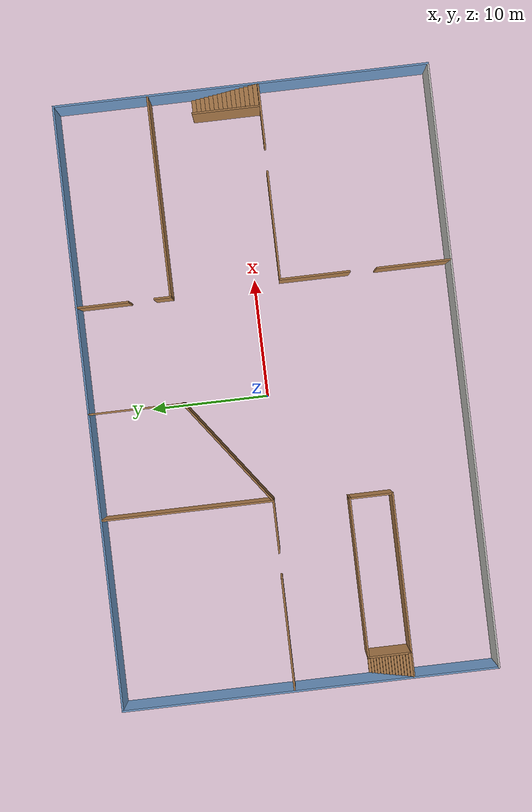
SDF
<?xml version='1.0'?>
<sdf version='1.6'>
  <model name='firstBuilding'>
    <pose frame=''>0.73104 -0.747693 0 0 -0 0</pose>
    <link name='Stairs_2'>
      <visual name='Stairs_2_Visual_0'>
        <pose frame=''>24.4573 4.15793 0.083333 0 -0 0</pose>
        <geometry>
          <box>
            <size>1.76432 0.380833 0.166667</size>
          </box>
        </geometry>
        <material>
          <script>
            <uri>file://media/materials/scripts/gazebo.material</uri>
            <name>Gazebo/Wood</name>
          </script>
          <ambient>1 1 1 1</ambient>
        </material>
        <meta>
          <layer>0</layer>
        </meta>
      </visual>
      <collision name='Stairs_2_Collision_0'>
        <geometry>
          <box>
            <size>1.76432 0.380833 0.166667</size>
          </box>
        </geometry>
        <pose frame=''>24.4573 4.15793 0.083333 0 -0 0</pose>
      </collision>
      <visual name='Stairs_2_Visual_1'>
        <pose frame=''>24.4573 3.77709 0.25 0 -0 0</pose>
        <geometry>
          <box>
            <size>1.76432 0.380833 0.166667</size>
          </box>
        </geometry>
        <material>
          <script>
            <uri>file://media/materials/scripts/gazebo.material</uri>
            <name>Gazebo/Wood</name>
          </script>
          <ambient>1 1 1 1</ambient>
        </material>
        <meta>
          <layer>0</layer>
        </meta>
      </visual>
      <collision name='Stairs_2_Collision_1'>
        <geometry>
          <box>
            <size>1.76432 0.380833 0.166667</size>
          </box>
        </geometry>
        <pose frame=''>24.4573 3.77709 0.25 0 -0 0</pose>
      </collision>
      <visual name='Stairs_2_Visual_2'>
        <pose frame=''>24.4573 3.39626 0.416667 0 -0 0</pose>
        <geometry>
          <box>
            <size>1.76432 0.380833 0.166667</size>
          </box>
        </geometry>
        <material>
          <script>
            <uri>file://media/materials/scripts/gazebo.material</uri>
            <name>Gazebo/Wood</name>
          </script>
          <ambient>1 1 1 1</ambient>
        </material>
        <meta>
          <layer>0</layer>
        </meta>
      </visual>
      <collision name='Stairs_2_Collision_2'>
        <geometry>
          <box>
            <size>1.76432 0.380833 0.166667</size>
          </box>
        </geometry>
        <pose frame=''>24.4573 3.39626 0.416667 0 -0 0</pose>
      </collision>
      <visual name='Stairs_2_Visual_3'>
        <pose frame=''>24.4573 3.01543 0.583333 0 -0 0</pose>
        <geometry>
          <box>
            <size>1.76432 0.380833 0.166667</size>
          </box>
        </geometry>
        <material>
          <script>
            <uri>file://media/materials/scripts/gazebo.material</uri>
            <name>Gazebo/Wood</name>
          </script>
          <ambient>1 1 1 1</ambient>
        </material>
        <meta>
          <layer>0</layer>
        </meta>
      </visual>
      <collision name='Stairs_2_Collision_3'>
        <geometry>
          <box>
            <size>1.76432 0.380833 0.166667</size>
          </box>
        </geometry>
        <pose frame=''>24.4573 3.01543 0.583333 0 -0 0</pose>
      </collision>
      <visual name='Stairs_2_Visual_4'>
        <pose frame=''>24.4573 2.6346 0.75 0 -0 0</pose>
        <geometry>
          <box>
            <size>1.76432 0.380833 0.166667</size>
          </box>
        </geometry>
        <material>
          <script>
            <uri>file://media/materials/scripts/gazebo.material</uri>
            <name>Gazebo/Wood</name>
          </script>
          <ambient>1 1 1 1</ambient>
        </material>
        <meta>
          <layer>0</layer>
        </meta>
      </visual>
      <collision name='Stairs_2_Collision_4'>
        <geometry>
          <box>
            <size>1.76432 0.380833 0.166667</size>
          </box>
        </geometry>
        <pose frame=''>24.4573 2.6346 0.75 0 -0 0</pose>
      </collision>
      <visual name='Stairs_2_Visual_5'>
        <pose frame=''>24.4573 2.25376 0.916667 0 -0 0</pose>
        <geometry>
          <box>
            <size>1.76432 0.380833 0.166667</size>
          </box>
        </geometry>
        <material>
          <script>
            <uri>file://media/materials/scripts/gazebo.material</uri>
            <name>Gazebo/Wood</name>
          </script>
          <ambient>1 1 1 1</ambient>
        </material>
        <meta>
          <layer>0</layer>
        </meta>
      </visual>
      <collision name='Stairs_2_Collision_5'>
        <geometry>
          <box>
            <size>1.76432 0.380833 0.166667</size>
          </box>
        </geometry>
        <pose frame=''>24.4573 2.25376 0.916667 0 -0 0</pose>
      </collision>
      <visual name='Stairs_2_Visual_6'>
        <pose frame=''>24.4573 1.87293 1.08333 0 -0 0</pose>
        <geometry>
          <box>
            <size>1.76432 0.380833 0.166667</size>
          </box>
        </geometry>
        <material>
          <script>
            <uri>file://media/materials/scripts/gazebo.material</uri>
            <name>Gazebo/Wood</name>
          </script>
          <ambient>1 1 1 1</ambient>
        </material>
        <meta>
          <layer>0</layer>
        </meta>
      </visual>
      <collision name='Stairs_2_Collision_6'>
        <geometry>
          <box>
            <size>1.76432 0.380833 0.166667</size>
          </box>
        </geometry>
        <pose frame=''>24.4573 1.87293 1.08333 0 -0 0</pose>
      </collision>
      <visual name='Stairs_2_Visual_7'>
        <pose frame=''>24.4573 1.4921 1.25 0 -0 0</pose>
        <geometry>
          <box>
            <size>1.76432 0.380833 0.166667</size>
          </box>
        </geometry>
        <material>
          <script>
            <uri>file://media/materials/scripts/gazebo.material</uri>
            <name>Gazebo/Wood</name>
          </script>
          <ambient>1 1 1 1</ambient>
        </material>
        <meta>
          <layer>0</layer>
        </meta>
      </visual>
      <collision name='Stairs_2_Collision_7'>
        <geometry>
          <box>
            <size>1.76432 0.380833 0.166667</size>
          </box>
        </geometry>
        <pose frame=''>24.4573 1.4921 1.25 0 -0 0</pose>
      </collision>
      <visual name='Stairs_2_Visual_8'>
        <pose frame=''>24.4573 1.11126 1.41667 0 -0 0</pose>
        <geometry>
          <box>
            <size>1.76432 0.380833 0.166667</size>
          </box>
        </geometry>
        <material>
          <script>
            <uri>file://media/materials/scripts/gazebo.material</uri>
            <name>Gazebo/Wood</name>
          </script>
          <ambient>1 1 1 1</ambient>
        </material>
        <meta>
          <layer>0</layer>
        </meta>
      </visual>
      <collision name='Stairs_2_Collision_8'>
        <geometry>
          <box>
            <size>1.76432 0.380833 0.166667</size>
          </box>
        </geometry>
        <pose frame=''>24.4573 1.11126 1.41667 0 -0 0</pose>
      </collision>
      <visual name='Stairs_2_Visual_9'>
        <pose frame=''>24.4573 0.73043 1.58333 0 -0 0</pose>
        <geometry>
          <box>
            <size>1.76432 0.380833 0.166667</size>
          </box>
        </geometry>
        <material>
          <script>
            <uri>file://media/materials/scripts/gazebo.material</uri>
            <name>Gazebo/Wood</name>
          </script>
          <ambient>1 1 1 1</ambient>
        </material>
        <meta>
          <layer>0</layer>
        </meta>
      </visual>
      <collision name='Stairs_2_Collision_9'>
        <geometry>
          <box>
            <size>1.76432 0.380833 0.166667</size>
          </box>
        </geometry>
        <pose frame=''>24.4573 0.73043 1.58333 0 -0 0</pose>
      </collision>
      <visual name='Stairs_2_Visual_10'>
        <pose frame=''>24.4573 0.349597 1.75 0 -0 0</pose>
        <geometry>
          <box>
            <size>1.76432 0.380833 0.166667</size>
          </box>
        </geometry>
        <material>
          <script>
            <uri>file://media/materials/scripts/gazebo.material</uri>
            <name>Gazebo/Wood</name>
          </script>
          <ambient>1 1 1 1</ambient>
        </material>
        <meta>
          <layer>0</layer>
        </meta>
      </visual>
      <collision name='Stairs_2_Collision_10'>
        <geometry>
          <box>
            <size>1.76432 0.380833 0.166667</size>
          </box>
        </geometry>
        <pose frame=''>24.4573 0.349597 1.75 0 -0 0</pose>
      </collision>
      <visual name='Stairs_2_Visual_11'>
        <pose frame=''>24.4573 -0.031236 1.91667 0 -0 0</pose>
        <geometry>
          <box>
            <size>1.76432 0.380833 0.166667</size>
          </box>
        </geometry>
        <material>
          <script>
            <uri>file://media/materials/scripts/gazebo.material</uri>
            <name>Gazebo/Wood</name>
          </script>
          <ambient>1 1 1 1</ambient>
        </material>
        <meta>
          <layer>0</layer>
        </meta>
      </visual>
      <collision name='Stairs_2_Collision_11'>
        <geometry>
          <box>
            <size>1.76432 0.380833 0.166667</size>
          </box>
        </geometry>
        <pose frame=''>24.4573 -0.031236 1.91667 0 -0 0</pose>
      </collision>
      <visual name='Stairs_2_Visual_12'>
        <pose frame=''>24.4573 -0.412068 2.08333 0 -0 0</pose>
        <geometry>
          <box>
            <size>1.76432 0.380833 0.166667</size>
          </box>
        </geometry>
        <material>
          <script>
            <uri>file://media/materials/scripts/gazebo.material</uri>
            <name>Gazebo/Wood</name>
          </script>
          <ambient>1 1 1 1</ambient>
        </material>
        <meta>
          <layer>0</layer>
        </meta>
      </visual>
      <collision name='Stairs_2_Collision_12'>
        <geometry>
          <box>
            <size>1.76432 0.380833 0.166667</size>
          </box>
        </geometry>
        <pose frame=''>24.4573 -0.412068 2.08333 0 -0 0</pose>
      </collision>
      <visual name='Stairs_2_Visual_13'>
        <pose frame=''>24.4573 -0.792901 2.25 0 -0 0</pose>
        <geometry>
          <box>
            <size>1.76432 0.380833 0.166667</size>
          </box>
        </geometry>
        <material>
          <script>
            <uri>file://media/materials/scripts/gazebo.material</uri>
            <name>Gazebo/Wood</name>
          </script>
          <ambient>1 1 1 1</ambient>
        </material>
        <meta>
          <layer>0</layer>
        </meta>
      </visual>
      <collision name='Stairs_2_Collision_13'>
        <geometry>
          <box>
            <size>1.76432 0.380833 0.166667</size>
          </box>
        </geometry>
        <pose frame=''>24.4573 -0.792901 2.25 0 -0 0</pose>
      </collision>
      <visual name='Stairs_2_Visual_14'>
        <pose frame=''>24.4573 -1.17373 2.41667 0 -0 0</pose>
        <geometry>
          <box>
            <size>1.76432 0.380833 0.166667</size>
          </box>
        </geometry>
        <material>
          <script>
            <uri>file://media/materials/scripts/gazebo.material</uri>
            <name>Gazebo/Wood</name>
          </script>
          <ambient>1 1 1 1</ambient>
        </material>
        <meta>
          <layer>0</layer>
        </meta>
      </visual>
      <collision name='Stairs_2_Collision_14'>
        <geometry>
          <box>
            <size>1.76432 0.380833 0.166667</size>
          </box>
        </geometry>
        <pose frame=''>24.4573 -1.17373 2.41667 0 -0 0</pose>
      </collision>
    </link>
    <link name='Stairs_3'>
      <visual name='Stairs_3_Visual_0'>
        <pose frame=''>-24.3472 -5.25106 0.083333 0 -0 0</pose>
        <geometry>
          <box>
            <size>1.94394 0.233333 0.166667</size>
          </box>
        </geometry>
        <material>
          <script>
            <uri>file://media/materials/scripts/gazebo.material</uri>
            <name>Gazebo/Wood</name>
          </script>
          <ambient>1 1 1 1</ambient>
        </material>
        <meta>
          <layer>0</layer>
        </meta>
      </visual>
      <collision name='Stairs_3_Collision_0'>
        <geometry>
          <box>
            <size>1.94394 0.233333 0.166667</size>
          </box>
        </geometry>
        <pose frame=''>-24.3472 -5.25106 0.083333 0 -0 0</pose>
      </collision>
      <visual name='Stairs_3_Visual_1'>
        <pose frame=''>-24.3472 -5.4844 0.25 0 -0 0</pose>
        <geometry>
          <box>
            <size>1.94394 0.233333 0.166667</size>
          </box>
        </geometry>
        <material>
          <script>
            <uri>file://media/materials/scripts/gazebo.material</uri>
            <name>Gazebo/Wood</name>
          </script>
          <ambient>1 1 1 1</ambient>
        </material>
        <meta>
          <layer>0</layer>
        </meta>
      </visual>
      <collision name='Stairs_3_Collision_1'>
        <geometry>
          <box>
            <size>1.94394 0.233333 0.166667</size>
          </box>
        </geometry>
        <pose frame=''>-24.3472 -5.4844 0.25 0 -0 0</pose>
      </collision>
      <visual name='Stairs_3_Visual_2'>
        <pose frame=''>-24.3472 -5.71773 0.416667 0 -0 0</pose>
        <geometry>
          <box>
            <size>1.94394 0.233333 0.166667</size>
          </box>
        </geometry>
        <material>
          <script>
            <uri>file://media/materials/scripts/gazebo.material</uri>
            <name>Gazebo/Wood</name>
          </script>
          <ambient>1 1 1 1</ambient>
        </material>
        <meta>
          <layer>0</layer>
        </meta>
      </visual>
      <collision name='Stairs_3_Collision_2'>
        <geometry>
          <box>
            <size>1.94394 0.233333 0.166667</size>
          </box>
        </geometry>
        <pose frame=''>-24.3472 -5.71773 0.416667 0 -0 0</pose>
      </collision>
      <visual name='Stairs_3_Visual_3'>
        <pose frame=''>-24.3472 -5.95106 0.583333 0 -0 0</pose>
        <geometry>
          <box>
            <size>1.94394 0.233333 0.166667</size>
          </box>
        </geometry>
        <material>
          <script>
            <uri>file://media/materials/scripts/gazebo.material</uri>
            <name>Gazebo/Wood</name>
          </script>
          <ambient>1 1 1 1</ambient>
        </material>
        <meta>
          <layer>0</layer>
        </meta>
      </visual>
      <collision name='Stairs_3_Collision_3'>
        <geometry>
          <box>
            <size>1.94394 0.233333 0.166667</size>
          </box>
        </geometry>
        <pose frame=''>-24.3472 -5.95106 0.583333 0 -0 0</pose>
      </collision>
      <visual name='Stairs_3_Visual_4'>
        <pose frame=''>-24.3472 -6.1844 0.75 0 -0 0</pose>
        <geometry>
          <box>
            <size>1.94394 0.233333 0.166667</size>
          </box>
        </geometry>
        <material>
          <script>
            <uri>file://media/materials/scripts/gazebo.material</uri>
            <name>Gazebo/Wood</name>
          </script>
          <ambient>1 1 1 1</ambient>
        </material>
        <meta>
          <layer>0</layer>
        </meta>
      </visual>
      <collision name='Stairs_3_Collision_4'>
        <geometry>
          <box>
            <size>1.94394 0.233333 0.166667</size>
          </box>
        </geometry>
        <pose frame=''>-24.3472 -6.1844 0.75 0 -0 0</pose>
      </collision>
      <visual name='Stairs_3_Visual_5'>
        <pose frame=''>-24.3472 -6.41773 0.916667 0 -0 0</pose>
        <geometry>
          <box>
            <size>1.94394 0.233333 0.166667</size>
          </box>
        </geometry>
        <material>
          <script>
            <uri>file://media/materials/scripts/gazebo.material</uri>
            <name>Gazebo/Wood</name>
          </script>
          <ambient>1 1 1 1</ambient>
        </material>
        <meta>
          <layer>0</layer>
        </meta>
      </visual>
      <collision name='Stairs_3_Collision_5'>
        <geometry>
          <box>
            <size>1.94394 0.233333 0.166667</size>
          </box>
        </geometry>
        <pose frame=''>-24.3472 -6.41773 0.916667 0 -0 0</pose>
      </collision>
      <visual name='Stairs_3_Visual_6'>
        <pose frame=''>-24.3472 -6.65106 1.08333 0 -0 0</pose>
        <geometry>
          <box>
            <size>1.94394 0.233333 0.166667</size>
          </box>
        </geometry>
        <material>
          <script>
            <uri>file://media/materials/scripts/gazebo.material</uri>
            <name>Gazebo/Wood</name>
          </script>
          <ambient>1 1 1 1</ambient>
        </material>
        <meta>
          <layer>0</layer>
        </meta>
      </visual>
      <collision name='Stairs_3_Collision_6'>
        <geometry>
          <box>
            <size>1.94394 0.233333 0.166667</size>
          </box>
        </geometry>
        <pose frame=''>-24.3472 -6.65106 1.08333 0 -0 0</pose>
      </collision>
      <visual name='Stairs_3_Visual_7'>
        <pose frame=''>-24.3472 -6.8844 1.25 0 -0 0</pose>
        <geometry>
          <box>
            <size>1.94394 0.233333 0.166667</size>
          </box>
        </geometry>
        <material>
          <script>
            <uri>file://media/materials/scripts/gazebo.material</uri>
            <name>Gazebo/Wood</name>
          </script>
          <ambient>1 1 1 1</ambient>
        </material>
        <meta>
          <layer>0</layer>
        </meta>
      </visual>
      <collision name='Stairs_3_Collision_7'>
        <geometry>
          <box>
            <size>1.94394 0.233333 0.166667</size>
          </box>
        </geometry>
        <pose frame=''>-24.3472 -6.8844 1.25 0 -0 0</pose>
      </collision>
      <visual name='Stairs_3_Visual_8'>
        <pose frame=''>-24.3472 -7.11773 1.41667 0 -0 0</pose>
        <geometry>
          <box>
            <size>1.94394 0.233333 0.166667</size>
          </box>
        </geometry>
        <material>
          <script>
            <uri>file://media/materials/scripts/gazebo.material</uri>
            <name>Gazebo/Wood</name>
          </script>
          <ambient>1 1 1 1</ambient>
        </material>
        <meta>
          <layer>0</layer>
        </meta>
      </visual>
      <collision name='Stairs_3_Collision_8'>
        <geometry>
          <box>
            <size>1.94394 0.233333 0.166667</size>
          </box>
        </geometry>
        <pose frame=''>-24.3472 -7.11773 1.41667 0 -0 0</pose>
      </collision>
      <visual name='Stairs_3_Visual_9'>
        <pose frame=''>-24.3472 -7.35106 1.58333 0 -0 0</pose>
        <geometry>
          <box>
            <size>1.94394 0.233333 0.166667</size>
          </box>
        </geometry>
        <material>
          <script>
            <uri>file://media/materials/scripts/gazebo.material</uri>
            <name>Gazebo/Wood</name>
          </script>
          <ambient>1 1 1 1</ambient>
        </material>
        <meta>
          <layer>0</layer>
        </meta>
      </visual>
      <collision name='Stairs_3_Collision_9'>
        <geometry>
          <box>
            <size>1.94394 0.233333 0.166667</size>
          </box>
        </geometry>
        <pose frame=''>-24.3472 -7.35106 1.58333 0 -0 0</pose>
      </collision>
      <visual name='Stairs_3_Visual_10'>
        <pose frame=''>-24.3472 -7.5844 1.75 0 -0 0</pose>
        <geometry>
          <box>
            <size>1.94394 0.233333 0.166667</size>
          </box>
        </geometry>
        <material>
          <script>
            <uri>file://media/materials/scripts/gazebo.material</uri>
            <name>Gazebo/Wood</name>
          </script>
          <ambient>1 1 1 1</ambient>
        </material>
        <meta>
          <layer>0</layer>
        </meta>
      </visual>
      <collision name='Stairs_3_Collision_10'>
        <geometry>
          <box>
            <size>1.94394 0.233333 0.166667</size>
          </box>
        </geometry>
        <pose frame=''>-24.3472 -7.5844 1.75 0 -0 0</pose>
      </collision>
      <visual name='Stairs_3_Visual_11'>
        <pose frame=''>-24.3472 -7.81773 1.91667 0 -0 0</pose>
        <geometry>
          <box>
            <size>1.94394 0.233333 0.166667</size>
          </box>
        </geometry>
        <material>
          <script>
            <uri>file://media/materials/scripts/gazebo.material</uri>
            <name>Gazebo/Wood</name>
          </script>
          <ambient>1 1 1 1</ambient>
        </material>
        <meta>
          <layer>0</layer>
        </meta>
      </visual>
      <collision name='Stairs_3_Collision_11'>
        <geometry>
          <box>
            <size>1.94394 0.233333 0.166667</size>
          </box>
        </geometry>
        <pose frame=''>-24.3472 -7.81773 1.91667 0 -0 0</pose>
      </collision>
      <visual name='Stairs_3_Visual_12'>
        <pose frame=''>-24.3472 -8.05106 2.08333 0 -0 0</pose>
        <geometry>
          <box>
            <size>1.94394 0.233333 0.166667</size>
          </box>
        </geometry>
        <material>
          <script>
            <uri>file://media/materials/scripts/gazebo.material</uri>
            <name>Gazebo/Wood</name>
          </script>
          <ambient>1 1 1 1</ambient>
        </material>
        <meta>
          <layer>0</layer>
        </meta>
      </visual>
      <collision name='Stairs_3_Collision_12'>
        <geometry>
          <box>
            <size>1.94394 0.233333 0.166667</size>
          </box>
        </geometry>
        <pose frame=''>-24.3472 -8.05106 2.08333 0 -0 0</pose>
      </collision>
      <visual name='Stairs_3_Visual_13'>
        <pose frame=''>-24.3472 -8.2844 2.25 0 -0 0</pose>
        <geometry>
          <box>
            <size>1.94394 0.233333 0.166667</size>
          </box>
        </geometry>
        <material>
          <script>
            <uri>file://media/materials/scripts/gazebo.material</uri>
            <name>Gazebo/Wood</name>
          </script>
          <ambient>1 1 1 1</ambient>
        </material>
        <meta>
          <layer>0</layer>
        </meta>
      </visual>
      <collision name='Stairs_3_Collision_13'>
        <geometry>
          <box>
            <size>1.94394 0.233333 0.166667</size>
          </box>
        </geometry>
        <pose frame=''>-24.3472 -8.2844 2.25 0 -0 0</pose>
      </collision>
      <visual name='Stairs_3_Visual_14'>
        <pose frame=''>-24.3472 -8.51773 2.41667 0 -0 0</pose>
        <geometry>
          <box>
            <size>1.94394 0.233333 0.166667</size>
          </box>
        </geometry>
        <material>
          <script>
            <uri>file://media/materials/scripts/gazebo.material</uri>
            <name>Gazebo/Wood</name>
          </script>
          <ambient>1 1 1 1</ambient>
        </material>
        <meta>
          <layer>0</layer>
        </meta>
      </visual>
      <collision name='Stairs_3_Collision_14'>
        <geometry>
          <box>
            <size>1.94394 0.233333 0.166667</size>
          </box>
        </geometry>
        <pose frame=''>-24.3472 -8.51773 2.41667 0 -0 0</pose>
      </collision>
    </link>
    <link name='Wall_18'>
      <collision name='Wall_18_Collision'>
        <geometry>
          <box>
            <size>51 0.15 2.5</size>
          </box>
        </geometry>
        <pose frame=''>0 0 1.25 0 -0 0</pose>
      </collision>
      <visual name='Wall_18_Visual'>
        <pose frame=''>0 0 1.25 0 -0 0</pose>
        <geometry>
          <box>
            <size>51 0.15 2.5</size>
          </box>
        </geometry>
        <material>
          <script>
            <uri>file://media/materials/scripts/gazebo.material</uri>
            <name>Gazebo/CeilingTiled</name>
          </script>
          <ambient>0.447059 0.623529 0.811765 1</ambient>
        </material>
        <meta>
          <layer>0</layer>
        </meta>
      </visual>
      <pose frame=''>0 -15.8099 0 0 -0 0</pose>
    </link>
    <link name='Wall_19'>
      <collision name='Wall_19_Collision'>
        <geometry>
          <box>
            <size>31.75 0.15 2.5</size>
          </box>
        </geometry>
        <pose frame=''>0 0 1.25 0 -0 0</pose>
      </collision>
      <visual name='Wall_19_Visual'>
        <pose frame=''>0 0 1.25 0 -0 0</pose>
        <geometry>
          <box>
            <size>31.75 0.15 2.5</size>
          </box>
        </geometry>
        <material>
          <script>
            <uri>file://media/materials/scripts/gazebo.material</uri>
            <name>Gazebo/Grey</name>
          </script>
          <ambient>0.447059 0.623529 0.811765 1</ambient>
        </material>
        <meta>
          <layer>0</layer>
        </meta>
      </visual>
      <pose frame=''>25.425 -0.009907 0 0 -0 1.5708</pose>
    </link>
    <link name='Wall_20'>
      <collision name='Wall_20_Collision'>
        <geometry>
          <box>
            <size>51 0.15 2.5</size>
          </box>
        </geometry>
        <pose frame=''>0 0 1.25 0 -0 0</pose>
      </collision>
      <visual name='Wall_20_Visual'>
        <pose frame=''>0 0 1.25 0 -0 0</pose>
        <geometry>
          <box>
            <size>51 0.15 2.5</size>
          </box>
        </geometry>
        <material>
          <script>
            <uri>file://media/materials/scripts/gazebo.material</uri>
            <name>Gazebo/Grey</name>
          </script>
          <ambient>0.447059 0.623529 0.811765 1</ambient>
        </material>
        <meta>
          <layer>0</layer>
        </meta>
      </visual>
      <pose frame=''>0 15.7901 0 0 -0 3.14159</pose>
    </link>
    <link name='Wall_21'>
      <collision name='Wall_21_Collision'>
        <geometry>
          <box>
            <size>31.75 0.15 2.5</size>
          </box>
        </geometry>
        <pose frame=''>0 0 1.25 0 -0 0</pose>
      </collision>
      <visual name='Wall_21_Visual'>
        <pose frame=''>0 0 1.25 0 -0 0</pose>
        <geometry>
          <box>
            <size>31.75 0.15 2.5</size>
          </box>
        </geometry>
        <material>
          <script>
            <uri>file://media/materials/scripts/gazebo.material</uri>
            <name>Gazebo/Grey</name>
          </script>
          <ambient>0.447059 0.623529 0.811765 1</ambient>
        </material>
        <meta>
          <layer>0</layer>
        </meta>
      </visual>
      <pose frame=''>-25.425 -0.009907 0 0 -0 -1.5708</pose>
    </link>
    <link name='Wall_23'>
      <collision name='Wall_23_Collision'>
        <geometry>
          <box>
            <size>9.5 0.15 2.5</size>
          </box>
        </geometry>
        <pose frame=''>0 0 1.25 0 -0 0</pose>
      </collision>
      <visual name='Wall_23_Visual'>
        <pose frame=''>0 0 1.25 0 -0 0</pose>
        <geometry>
          <box>
            <size>9.5 0.15 2.5</size>
          </box>
        </geometry>
        <material>
          <script>
            <uri>file://media/materials/scripts/gazebo.material</uri>
            <name>Gazebo/Wood</name>
          </script>
          <ambient>1 1 1 1</ambient>
        </material>
        <meta>
          <layer>0</layer>
        </meta>
      </visual>
      <pose frame=''>-20.7455 1.34681 0 0 -0 0</pose>
    </link>
    <link name='Wall_25'>
      <collision name='Wall_25_Collision'>
        <geometry>
          <box>
            <size>4.5 0.15 2.5</size>
          </box>
        </geometry>
        <pose frame=''>0 0 1.25 0 -0 0</pose>
      </collision>
      <visual name='Wall_25_Visual'>
        <pose frame=''>0 0 1.25 0 -0 0</pose>
        <geometry>
          <box>
            <size>4.5 0.15 2.5</size>
          </box>
        </geometry>
        <material>
          <script>
            <uri>file://media/materials/scripts/gazebo.material</uri>
            <name>Gazebo/Wood</name>
          </script>
          <ambient>1 1 1 1</ambient>
        </material>
        <meta>
          <layer>0</layer>
        </meta>
      </visual>
      <pose frame=''>-11.6355 1.2933 0 0 -0 0</pose>
    </link>
    <link name='Wall_26'>
      <collision name='Wall_26_Collision'>
        <geometry>
          <box>
            <size>14.5 0.15 2.5</size>
          </box>
        </geometry>
        <pose frame=''>0 0 1.25 0 -0 0</pose>
      </collision>
      <visual name='Wall_26_Visual'>
        <pose frame=''>0 0 1.25 0 -0 0</pose>
        <geometry>
          <box>
            <size>14.5 0.15 2.5</size>
          </box>
        </geometry>
        <material>
          <script>
            <uri>file://media/materials/scripts/gazebo.material</uri>
            <name>Gazebo/Wood</name>
          </script>
          <ambient>1 1 1 1</ambient>
        </material>
        <meta>
          <layer>0</layer>
        </meta>
      </visual>
      <pose frame=''>-9.46046 8.4683 0 0 -0 1.5708</pose>
    </link>
    <link name='Wall_28'>
      <collision name='Wall_28_Collision'>
        <geometry>
          <box>
            <size>6.25 0.15 2.5</size>
          </box>
        </geometry>
        <pose frame=''>0 0 1.25 0 -0 0</pose>
      </collision>
      <visual name='Wall_28_Visual'>
        <pose frame=''>0 0 1.25 0 -0 0</pose>
        <geometry>
          <box>
            <size>6.25 0.15 2.5</size>
          </box>
        </geometry>
        <material>
          <script>
            <uri>file://media/materials/scripts/gazebo.material</uri>
            <name>Gazebo/Wood</name>
          </script>
          <ambient>1 1 1 1</ambient>
        </material>
        <meta>
          <layer>0</layer>
        </meta>
      </visual>
      <pose frame=''>8.8746 -12.6705 0 0 -0 1.5708</pose>
    </link>
    <link name='Wall_30'>
      <collision name='Wall_30_Collision'>
        <geometry>
          <box>
            <size>6 0.15 2.5</size>
          </box>
        </geometry>
        <pose frame=''>0 0 1.25 0 -0 0</pose>
      </collision>
      <visual name='Wall_30_Visual'>
        <pose frame=''>0 0 1.25 0 -0 0</pose>
        <geometry>
          <box>
            <size>6 0.15 2.5</size>
          </box>
        </geometry>
        <material>
          <script>
            <uri>file://media/materials/scripts/gazebo.material</uri>
            <name>Gazebo/Wood</name>
          </script>
          <ambient>1 1 1 1</ambient>
        </material>
        <meta>
          <layer>0</layer>
        </meta>
      </visual>
      <pose frame=''>8.8746 -4.3421 0 0 -0 1.5708</pose>
    </link>
    <link name='Wall_31'>
      <collision name='Wall_31_Collision'>
        <geometry>
          <box>
            <size>9.25 0.15 2.5</size>
          </box>
        </geometry>
        <pose frame=''>0 0 1.25 0 -0 0</pose>
      </collision>
      <visual name='Wall_31_Visual'>
        <pose frame=''>0 0 1.25 0 -0 0</pose>
        <geometry>
          <box>
            <size>9.25 0.15 2.5</size>
          </box>
        </geometry>
        <material>
          <script>
            <uri>file://media/materials/scripts/gazebo.material</uri>
            <name>Gazebo/Wood</name>
          </script>
          <ambient>1 1 1 1</ambient>
        </material>
        <meta>
          <layer>0</layer>
        </meta>
      </visual>
      <pose frame=''>13.4246 -1.4171 0 0 -0 0</pose>
    </link>
    <link name='Wall_33'>
      <collision name='Wall_33_Collision'>
        <geometry>
          <box>
            <size>5 0.15 2.5</size>
          </box>
        </geometry>
        <pose frame=''>0 0 1.25 0 -0 0</pose>
      </collision>
      <visual name='Wall_33_Visual'>
        <pose frame=''>0 0 1.25 0 -0 0</pose>
        <geometry>
          <box>
            <size>5 0.15 2.5</size>
          </box>
        </geometry>
        <material>
          <script>
            <uri>file://media/materials/scripts/gazebo.material</uri>
            <name>Gazebo/Wood</name>
          </script>
          <ambient>1 1 1 1</ambient>
        </material>
        <meta>
          <layer>0</layer>
        </meta>
      </visual>
      <pose frame=''>22.9017 -1.46864 0 0 -0 0</pose>
    </link>
    <link name='Wall_37'>
      <collision name='Wall_37_Collision'>
        <geometry>
          <box>
            <size>5.75 0.15 2.5</size>
          </box>
        </geometry>
        <pose frame=''>0 0 1.25 0 -0 0</pose>
      </collision>
      <visual name='Wall_37_Visual'>
        <pose frame=''>0 0 1.25 0 -0 0</pose>
        <geometry>
          <box>
            <size>5.75 0.15 2.5</size>
          </box>
        </geometry>
        <material>
          <script>
            <uri>file://media/materials/scripts/gazebo.material</uri>
            <name>Gazebo/Wood</name>
          </script>
          <ambient>1 1 1 1</ambient>
        </material>
        <meta>
          <layer>0</layer>
        </meta>
      </visual>
      <pose frame=''>23.5165 1.44255 0 0 -0 1.5708</pose>
    </link>
    <link name='Wall_39'>
      <collision name='Wall_39_Collision'>
        <geometry>
          <box>
            <size>15.5 0.15 2.5</size>
          </box>
        </geometry>
        <pose frame=''>0 0 1.25 0 -0 0</pose>
      </collision>
      <visual name='Wall_39_Visual'>
        <pose frame=''>0 0 1.25 0 -0 0</pose>
        <geometry>
          <box>
            <size>15.5 0.15 2.5</size>
          </box>
        </geometry>
        <material>
          <script>
            <uri>file://media/materials/scripts/gazebo.material</uri>
            <name>Gazebo/Wood</name>
          </script>
          <ambient>1 1 1 1</ambient>
        </material>
        <meta>
          <layer>0</layer>
        </meta>
      </visual>
      <pose frame=''>-17.6762 -8.6792 0 0 -0 0</pose>
    </link>
    <link name='Wall_40'>
      <collision name='Wall_40_Collision'>
        <geometry>
          <box>
            <size>3.75 0.15 2.5</size>
          </box>
        </geometry>
        <pose frame=''>0 0 1.25 0 -0 0</pose>
      </collision>
      <visual name='Wall_40_Visual'>
        <pose frame=''>0 0 1.25 0 -0 0</pose>
        <geometry>
          <box>
            <size>3.75 0.15 2.5</size>
          </box>
        </geometry>
        <material>
          <script>
            <uri>file://media/materials/scripts/gazebo.material</uri>
            <name>Gazebo/Wood</name>
          </script>
          <ambient>1 1 1 1</ambient>
        </material>
        <meta>
          <layer>0</layer>
        </meta>
      </visual>
      <pose frame=''>-10.0012 -6.8792 0 0 -0 1.5708</pose>
    </link>
    <link name='Wall_41'>
      <collision name='Wall_41_Collision'>
        <geometry>
          <box>
            <size>13.5 0.15 2.5</size>
          </box>
        </geometry>
        <pose frame=''>0 0 1.25 0 -0 0</pose>
      </collision>
      <visual name='Wall_41_Visual'>
        <pose frame=''>0 0 1.25 0 -0 0</pose>
        <geometry>
          <box>
            <size>13.5 0.15 2.5</size>
          </box>
        </geometry>
        <material>
          <script>
            <uri>file://media/materials/scripts/gazebo.material</uri>
            <name>Gazebo/Wood</name>
          </script>
          <ambient>1 1 1 1</ambient>
        </material>
        <meta>
          <layer>0</layer>
        </meta>
      </visual>
      <pose frame=''>-16.6762 -5.0792 0 0 -0 3.14159</pose>
    </link>
    <link name='Wall_42'>
      <collision name='Wall_42_Collision'>
        <geometry>
          <box>
            <size>3.75 0.15 2.5</size>
          </box>
        </geometry>
        <pose frame=''>0 0 1.25 0 -0 0</pose>
      </collision>
      <visual name='Wall_42_Visual'>
        <pose frame=''>0 0 1.25 0 -0 0</pose>
        <geometry>
          <box>
            <size>3.75 0.15 2.5</size>
          </box>
        </geometry>
        <material>
          <script>
            <uri>file://media/materials/scripts/gazebo.material</uri>
            <name>Gazebo/Wood</name>
          </script>
          <ambient>1 1 1 1</ambient>
        </material>
        <meta>
          <layer>0</layer>
        </meta>
      </visual>
      <pose frame=''>-23.3512 -6.8792 0 0 -0 -1.5708</pose>
    </link>
    <link name='Wall_44'>
      <collision name='Wall_44_Collision'>
        <geometry>
          <box>
            <size>17 0.15 2.5</size>
          </box>
        </geometry>
        <pose frame=''>0 0 1.25 0 -0 0</pose>
      </collision>
      <visual name='Wall_44_Visual'>
        <pose frame=''>0 0 1.25 0 -0 0</pose>
        <geometry>
          <box>
            <size>17 0.15 2.5</size>
          </box>
        </geometry>
        <material>
          <script>
            <uri>file://media/materials/scripts/gazebo.material</uri>
            <name>Gazebo/Wood</name>
          </script>
          <ambient>1 1 1 1</ambient>
        </material>
        <meta>
          <layer>0</layer>
        </meta>
      </visual>
      <pose frame=''>16.8955 7.86566 0 0 -0 3.14159</pose>
    </link>
    <link name='Wall_45'>
      <collision name='Wall_45_Collision'>
        <geometry>
          <box>
            <size>1.5 0.15 2.5</size>
          </box>
        </geometry>
        <pose frame=''>0 0 1.25 0 -0 0</pose>
      </collision>
      <visual name='Wall_45_Visual'>
        <pose frame=''>0 0 1.25 0 -0 0</pose>
        <geometry>
          <box>
            <size>1.5 0.15 2.5</size>
          </box>
        </geometry>
        <material>
          <script>
            <uri>file://media/materials/scripts/gazebo.material</uri>
            <name>Gazebo/Wood</name>
          </script>
          <ambient>1 1 1 1</ambient>
        </material>
        <meta>
          <layer>0</layer>
        </meta>
      </visual>
      <pose frame=''>8.47048 8.54066 0 0 -0 1.5708</pose>
    </link>
    <link name='Wall_47'>
      <collision name='Wall_47_Collision'>
        <geometry>
          <box>
            <size>4.5 0.15 2.5</size>
          </box>
        </geometry>
        <pose frame=''>0 0 1.25 0 -0 0</pose>
      </collision>
      <visual name='Wall_47_Visual'>
        <pose frame=''>0 0 1.25 0 -0 0</pose>
        <geometry>
          <box>
            <size>4.5 0.15 2.5</size>
          </box>
        </geometry>
        <material>
          <script>
            <uri>file://media/materials/scripts/gazebo.material</uri>
            <name>Gazebo/Wood</name>
          </script>
          <ambient>1 1 1 1</ambient>
        </material>
        <meta>
          <layer>0</layer>
        </meta>
      </visual>
      <pose frame=''>8.46633 13.6349 0 0 -0 -1.5708</pose>
    </link>
    <link name='Wall_49'>
      <collision name='Wall_49_Collision'>
        <geometry>
          <box>
            <size>8 0.15 2.5</size>
          </box>
        </geometry>
        <pose frame=''>0 0 1.25 0 -0 0</pose>
      </collision>
      <visual name='Wall_49_Visual'>
        <pose frame=''>0 0 1.25 0 -0 0</pose>
        <geometry>
          <box>
            <size>8 0.15 2.5</size>
          </box>
        </geometry>
        <material>
          <script>
            <uri>file://media/materials/scripts/gazebo.material</uri>
            <name>Gazebo/Wood</name>
          </script>
          <ambient>1 1 1 1</ambient>
        </material>
        <meta>
          <layer>0</layer>
        </meta>
      </visual>
      <pose frame=''>-0.524426 11.7897 0 0 -0 -1.5708</pose>
    </link>
    <link name='Wall_50'>
      <collision name='Wall_50_Collision'>
        <geometry>
          <box>
            <size>11.2421 0.15 2.5</size>
          </box>
        </geometry>
        <pose frame=''>0 0 1.25 0 -0 0</pose>
      </collision>
      <visual name='Wall_50_Visual'>
        <pose frame=''>0 0 1.25 0 -0 0</pose>
        <geometry>
          <box>
            <size>11.2421 0.15 2.5</size>
          </box>
        </geometry>
        <material>
          <script>
            <uri>file://media/materials/scripts/gazebo.material</uri>
            <name>Gazebo/Wood</name>
          </script>
          <ambient>1 1 1 1</ambient>
        </material>
        <meta>
          <layer>0</layer>
        </meta>
      </visual>
      <pose frame=''>-4.99244 4.57898 0 0 -0 -2.50752</pose>
    </link>
    <static>1</static>
  </model>
</sdf>
